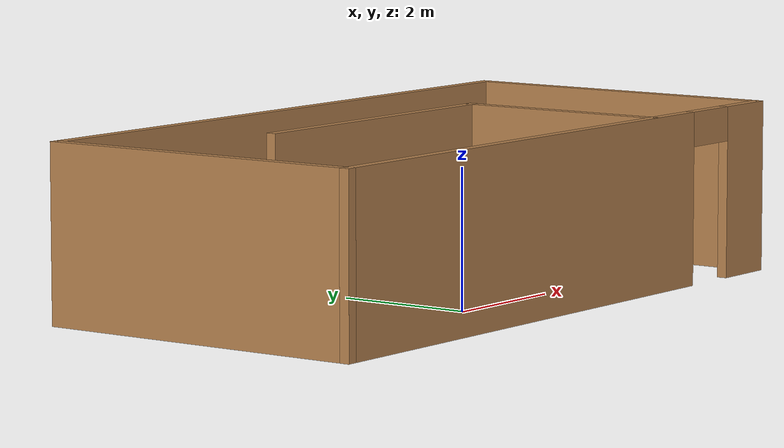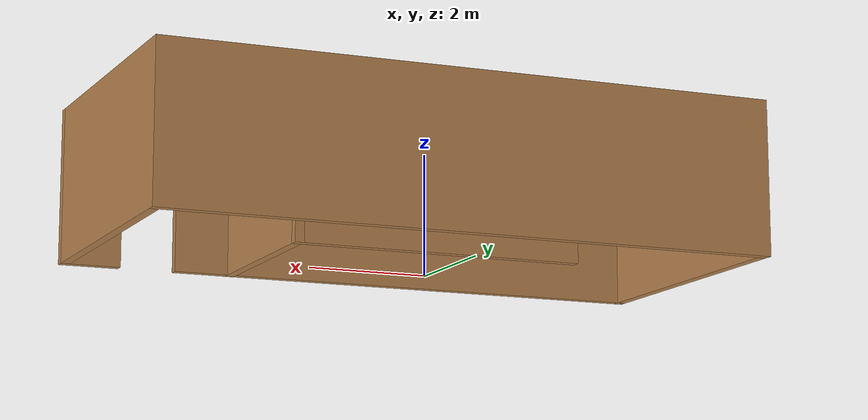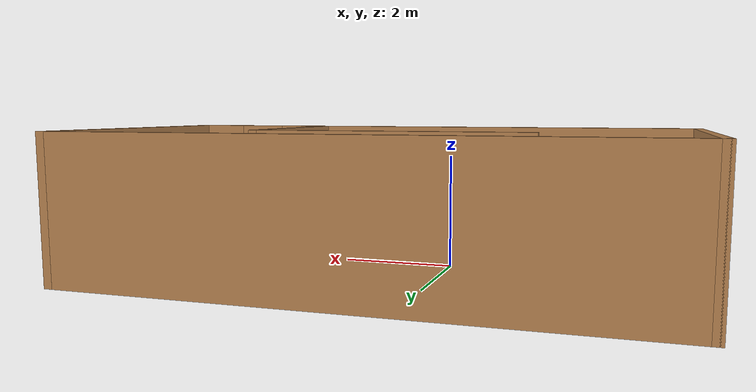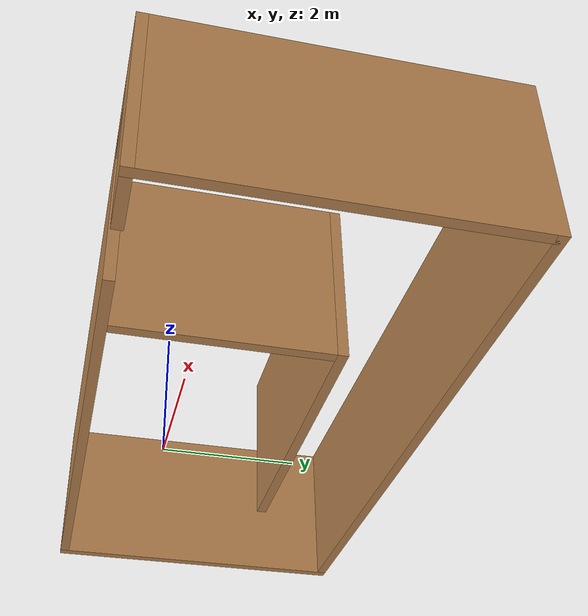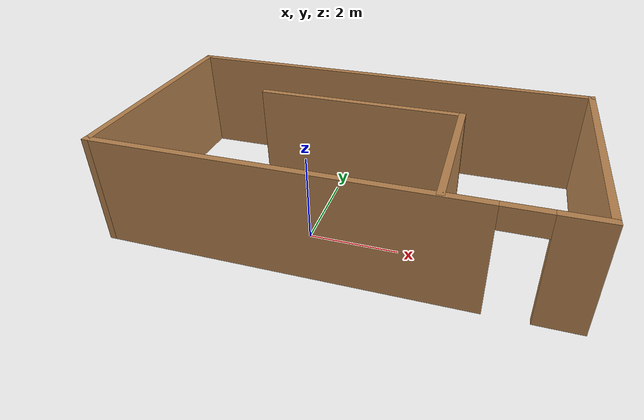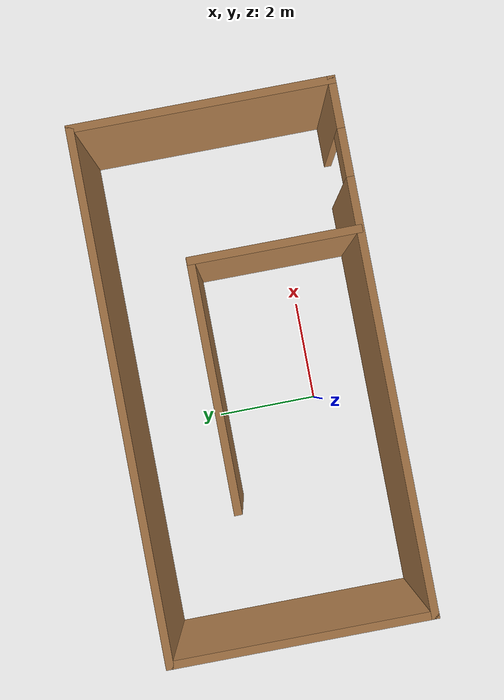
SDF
<?xml version='1.0'?>
<sdf version='1.6'>
  <model name='Room'>
    <pose frame=''>0.747122 1.21423 0 0 -0 0</pose>
    <link name='Wall_2'>
      <collision name='Wall_2_Collision'>
        <geometry>
          <box>
            <size>10 0.15 2.5</size>
          </box>
        </geometry>
        <pose frame=''>0 0 1.25 0 -0 0</pose>
      </collision>
      <visual name='Wall_2_Visual'>
        <pose frame=''>0 0 1.25 0 -0 0</pose>
        <geometry>
          <box>
            <size>10 0.15 2.5</size>
          </box>
        </geometry>
        <material>
          <script>
            <uri>file://media/materials/scripts/gazebo.material</uri>
            <name>Gazebo/Wood</name>
          </script>
          <ambient>1 1 1 1</ambient>
        </material>
        <meta>
          <layer>0</layer>
        </meta>
      </visual>
      <pose frame=''>0 2.425 0 0 -0 0</pose>
    </link>
    <link name='Wall_3'>
      <collision name='Wall_3_Collision'>
        <geometry>
          <box>
            <size>5 0.15 2.5</size>
          </box>
        </geometry>
        <pose frame=''>0 0 1.25 0 -0 0</pose>
      </collision>
      <visual name='Wall_3_Visual'>
        <pose frame=''>0 0 1.25 0 -0 0</pose>
        <geometry>
          <box>
            <size>5 0.15 2.5</size>
          </box>
        </geometry>
        <material>
          <script>
            <uri>file://media/materials/scripts/gazebo.material</uri>
            <name>Gazebo/Wood</name>
          </script>
          <ambient>1 1 1 1</ambient>
        </material>
        <meta>
          <layer>0</layer>
        </meta>
      </visual>
      <pose frame=''>4.925 0 0 0 -0 -1.5708</pose>
    </link>
    <link name='Wall_4'>
      <pose frame=''>0 -2.425 0 0 -0 3.14159</pose>
      <visual name='Wall_4_Visual_0'>
        <pose frame=''>-4.51185 0 1.25 0 -0 0</pose>
        <geometry>
          <box>
            <size>0.976297 0.15 2.5</size>
          </box>
        </geometry>
        <material>
          <script>
            <uri>file://media/materials/scripts/gazebo.material</uri>
            <name>Gazebo/Wood</name>
          </script>
          <ambient>1 1 1 1</ambient>
        </material>
        <meta>
          <layer>0</layer>
        </meta>
      </visual>
      <collision name='Wall_4_Collision_0'>
        <geometry>
          <box>
            <size>0.976297 0.15 2.5</size>
          </box>
        </geometry>
        <pose frame=''>-4.51185 0 1.25 0 -0 0</pose>
      </collision>
      <visual name='Wall_4_Visual_1'>
        <pose frame=''>0.938149 0 1.25 0 -0 0</pose>
        <geometry>
          <box>
            <size>8.1237 0.15 2.5</size>
          </box>
        </geometry>
        <material>
          <script>
            <uri>file://media/materials/scripts/gazebo.material</uri>
            <name>Gazebo/Wood</name>
          </script>
          <ambient>1 1 1 1</ambient>
        </material>
        <meta>
          <layer>0</layer>
        </meta>
      </visual>
      <collision name='Wall_4_Collision_1'>
        <geometry>
          <box>
            <size>8.1237 0.15 2.5</size>
          </box>
        </geometry>
        <pose frame=''>0.938149 0 1.25 0 -0 0</pose>
      </collision>
      <visual name='Wall_4_Visual_2'>
        <pose frame=''>-3.5737 0 2.25 0 -0 0</pose>
        <geometry>
          <box>
            <size>0.9 0.15 0.5</size>
          </box>
        </geometry>
        <material>
          <script>
            <uri>file://media/materials/scripts/gazebo.material</uri>
            <name>Gazebo/Wood</name>
          </script>
          <ambient>1 1 1 1</ambient>
        </material>
        <meta>
          <layer>0</layer>
        </meta>
      </visual>
      <collision name='Wall_4_Collision_2'>
        <geometry>
          <box>
            <size>0.9 0.15 0.5</size>
          </box>
        </geometry>
        <pose frame=''>-3.5737 0 2.25 0 -0 0</pose>
      </collision>
    </link>
    <link name='Wall_5'>
      <collision name='Wall_5_Collision'>
        <geometry>
          <box>
            <size>5 0.15 2.5</size>
          </box>
        </geometry>
        <pose frame=''>0 0 1.25 0 -0 0</pose>
      </collision>
      <visual name='Wall_5_Visual'>
        <pose frame=''>0 0 1.25 0 -0 0</pose>
        <geometry>
          <box>
            <size>5 0.15 2.5</size>
          </box>
        </geometry>
        <material>
          <script>
            <uri>file://media/materials/scripts/gazebo.material</uri>
            <name>Gazebo/Wood</name>
          </script>
          <ambient>1 1 1 1</ambient>
        </material>
        <meta>
          <layer>0</layer>
        </meta>
      </visual>
      <pose frame=''>-4.925 0 0 0 -0 1.5708</pose>
    </link>
    <link name='Wall_7'>
      <collision name='Wall_7_Collision'>
        <geometry>
          <box>
            <size>3.25 0.15 2.5</size>
          </box>
        </geometry>
        <pose frame=''>0 0 1.25 0 -0 0</pose>
      </collision>
      <visual name='Wall_7_Visual'>
        <pose frame=''>0 0 1.25 0 -0 0</pose>
        <geometry>
          <box>
            <size>3.25 0.15 2.5</size>
          </box>
        </geometry>
        <material>
          <script>
            <uri>file://media/materials/scripts/gazebo.material</uri>
            <name>Gazebo/Wood</name>
          </script>
          <ambient>1 1 1 1</ambient>
        </material>
        <meta>
          <layer>0</layer>
        </meta>
      </visual>
      <pose frame=''>2.15808 -0.837552 0 0 -0 1.5708</pose>
    </link>
    <link name='Wall_8'>
      <collision name='Wall_8_Collision'>
        <geometry>
          <box>
            <size>4.75 0.15 2.5</size>
          </box>
        </geometry>
        <pose frame=''>0 0 1.25 0 -0 0</pose>
      </collision>
      <visual name='Wall_8_Visual'>
        <pose frame=''>0 0 1.25 0 -0 0</pose>
        <geometry>
          <box>
            <size>4.75 0.15 2.5</size>
          </box>
        </geometry>
        <material>
          <script>
            <uri>file://media/materials/scripts/gazebo.material</uri>
            <name>Gazebo/Wood</name>
          </script>
          <ambient>1 1 1 1</ambient>
        </material>
        <meta>
          <layer>0</layer>
        </meta>
      </visual>
      <pose frame=''>-0.141924 0.712448 0 0 -0 3.14159</pose>
    </link>
    <static>1</static>
  </model>
</sdf>
